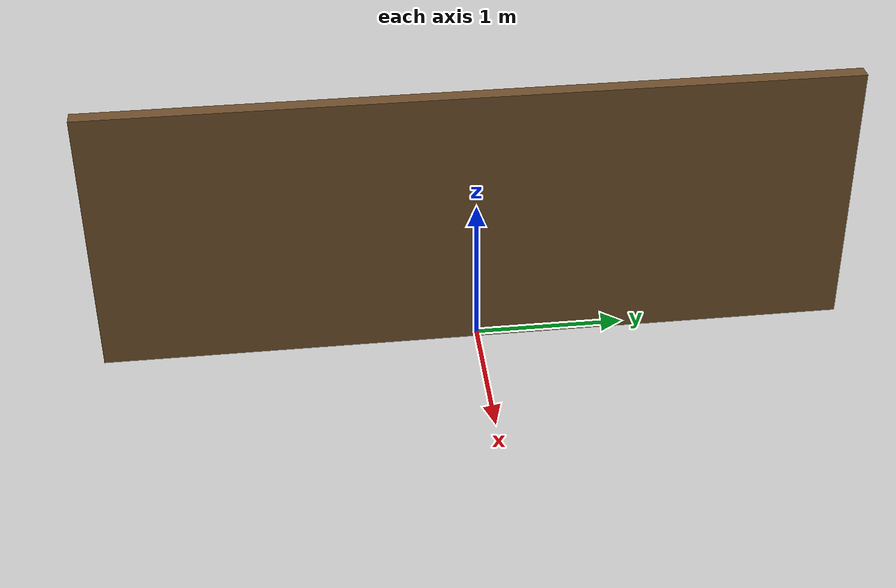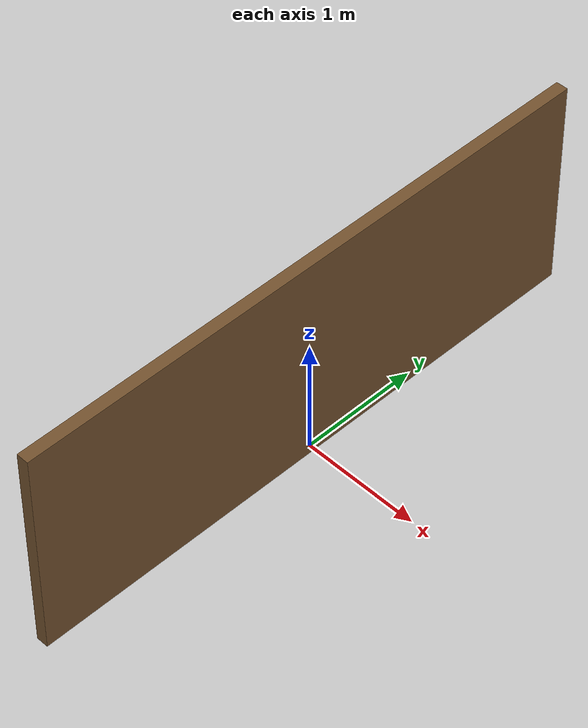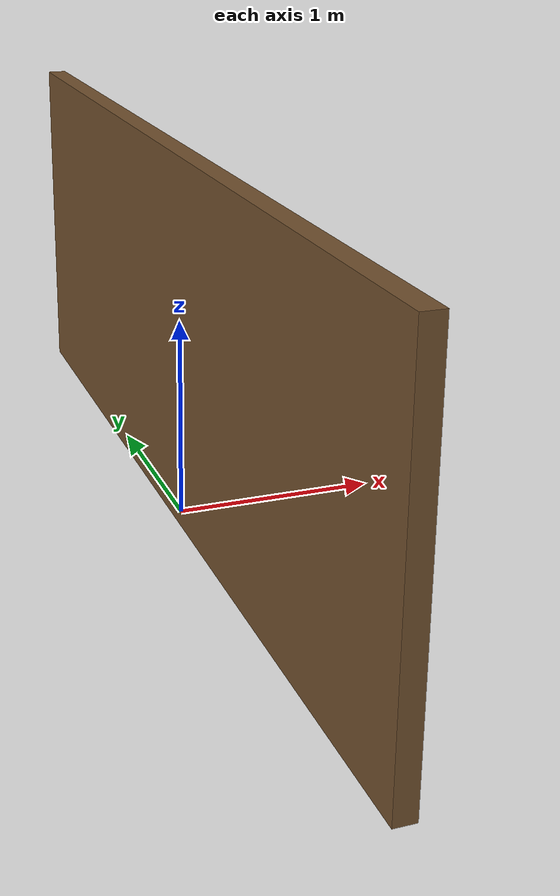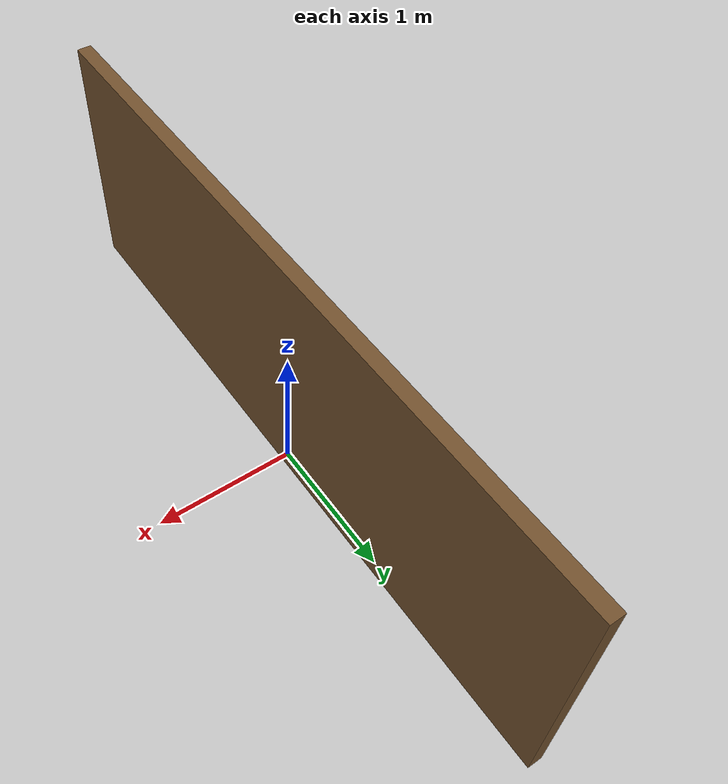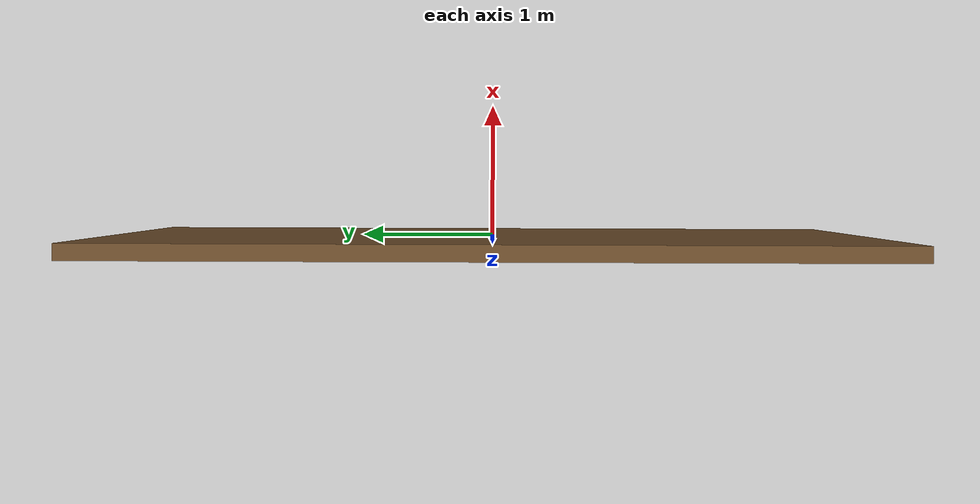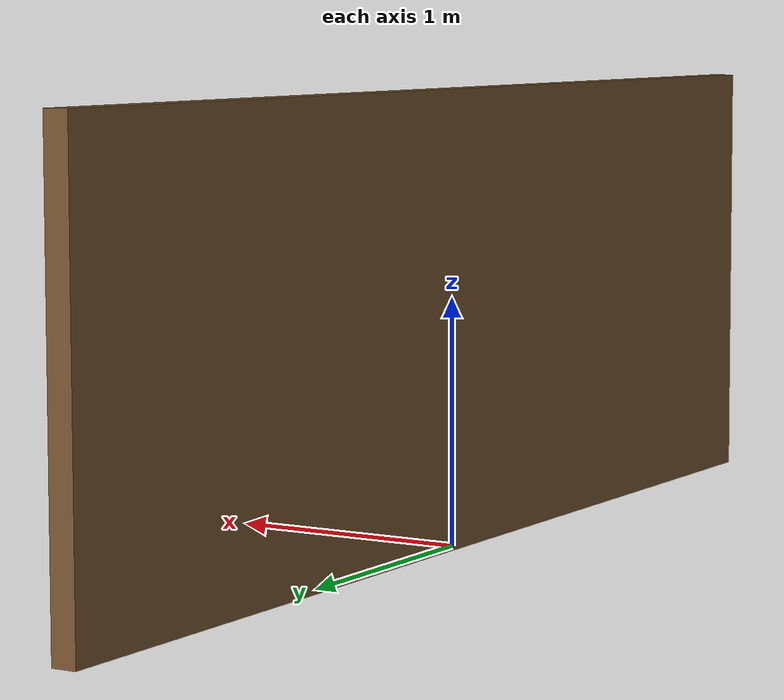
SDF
<?xml version="1.0" ?>
<sdf version="1.5">
  <model name="fence">
    <static>true</static>
    <link name="link">
      <pose>0 0 0.915 0 0 0</pose>
      <collision name="collision">
        <geometry>
          <box>
            <size>0.1 5. 1.83</size>
          </box>
        </geometry>
      </collision>
      <visual name="visual">
        <cast_shadows>false</cast_shadows>
        <geometry>
          <box>
            <size>0.1 5. 1.83</size>
          </box>
        </geometry>
        <material>
          <ambient>0.35 0.25 0.15 1</ambient>
          <diffuse>0.45 0.32 0.18 1</diffuse>
          <specular>0.1 0.1 0.1 1</specular>
          <pbr>
            <metal>
              <albedo_map>model://fence/materials/textures/woodboarding4.jpg</albedo_map>
              <metalness>0.0</metalness>
              <roughness>0.8</roughness>
            </metal>
          </pbr>
        </material>
      </visual>
    </link>
  </model>
</sdf>
